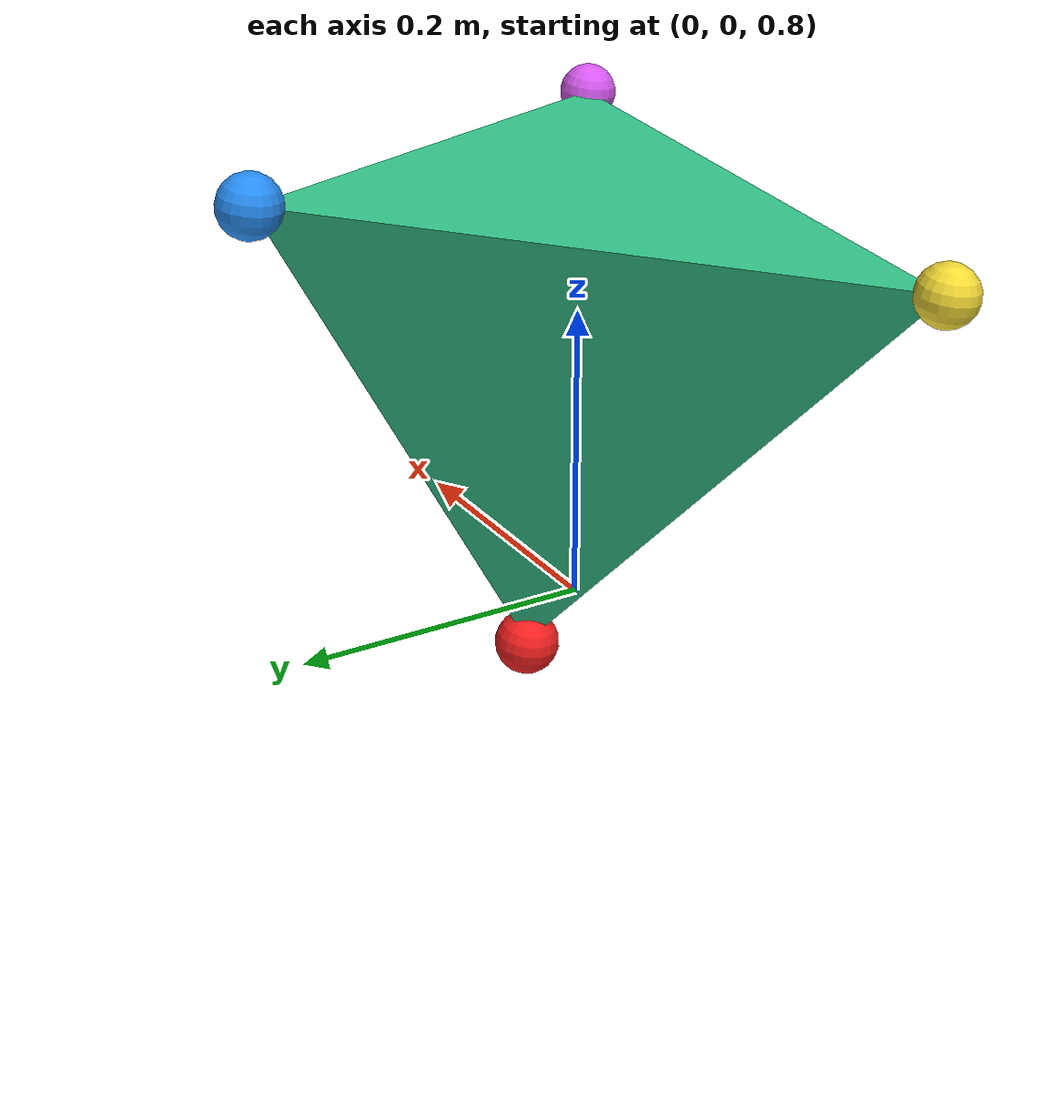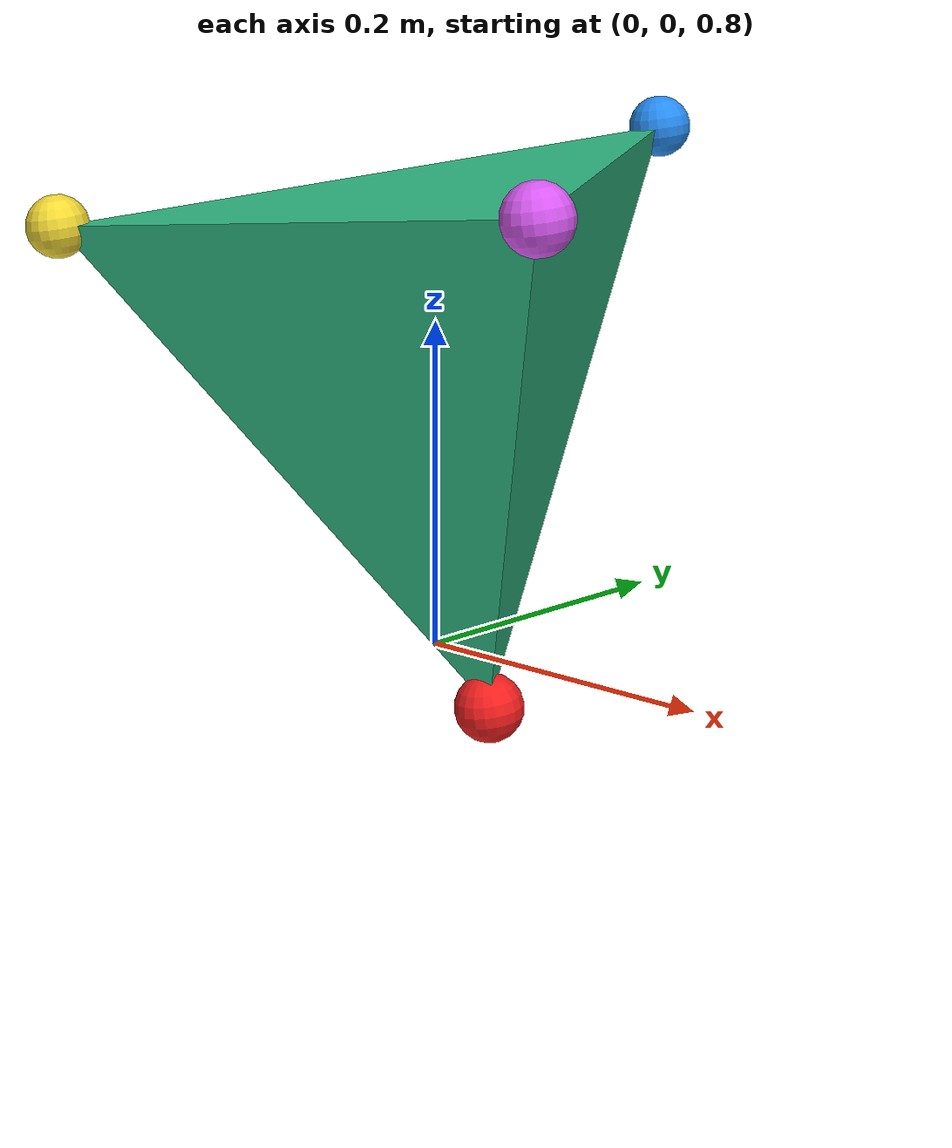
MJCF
<mujoco model="tetraedro_invertido">
  <compiler angle="degree" autolimits="true"/>
  <option timestep="0.002" gravity="0 0 -9.81"/>

  <visual>
    <global offwidth="1280" offheight="720"/>
    <quality shadowsize="4096"/>
    <headlight ambient="0.35 0.35 0.35" diffuse="0.65 0.65 0.65" specular="0.05 0.05 0.05"/>
    <rgba haze="0.15 0.25 0.35 1"/>
    <!-- setas/discos de contato (flags mjVIS_CONTACT*): finos para não cobrir o objeto -->
    <scale contactwidth="0.08" contactheight="0.02" forcewidth="0.04"/>
    <map force="0.002"/>
  </visual>
  <statistic center="0 0 0.45" extent="1.7"/>

  <asset>
    <texture type="skybox" builtin="gradient" rgb1="0.50 0.72 0.95" rgb2="0.03 0.05 0.10" width="512" height="3072"/>
    <texture name="grade" type="2d" builtin="checker" rgb1="0.19 0.23 0.29" rgb2="0.27 0.32 0.39"
             width="512" height="512" mark="edge" markrgb="0.55 0.60 0.66"/>
    <material name="piso" texture="grade" texrepeat="5 5" texuniform="true" reflectance="0.12"/>
    <material name="verde" rgba="0.20 0.78 0.55 1" specular="0.35" shininess="0.5"/>
    <mesh name="tetraedro" vertex="
       0.00000  0.23094  0.08165
      -0.20000 -0.11547  0.08165
       0.20000 -0.11547  0.08165
       0.00000  0.00000 -0.24495"/>
  </asset>

  <custom>
    <numeric name="esperado_massa_kg"       data="7.5425"/>    <!-- 1000 · a³/(6√2) -->
    <numeric name="esperado_altura_repouso" data="0.08165"/>   <!-- raio inscrito = a·√6/12, apoiado numa face -->
  </custom>

  <worldbody>
    <light name="sol" pos="1.5 -2.5 4" dir="-0.3 0.6 -1" type="directional" diffuse="0.85 0.85 0.85" specular="0.2 0.2 0.2"/>
    <camera name="frontal" pos="0 -2.15 0.60" xyaxes="1 0 0 0 0.04 1"/>

    <geom name="chao" type="plane" size="4 4 0.05" material="piso"
          friction="0.8 0.005 0.0001" solref="0.01 0.6"/>

    <!-- começa a 1.0 m, com a ponta para baixo e uma pequena inclinação para tornar o tombamento determinístico -->
    <body name="triangulo" pos="0 0 1.0" euler="6 -5 0">
      <freejoint name="livre"/>
      <geom name="tetraedro" type="mesh" mesh="tetraedro" material="verde"
            density="1000" friction="0.8 0.005 0.0001" solref="0.01 0.6"/>
      <site name="ponta"   type="sphere" pos=" 0.00  0.00 -0.24495" size="0.022" rgba="0.95 0.12 0.12 1"/>
      <site name="canto_a" type="sphere" pos=" 0.00  0.23094  0.08165" size="0.02" rgba="0.15 0.55 0.95 1"/>
      <site name="canto_b" type="sphere" pos="-0.20 -0.11547  0.08165" size="0.02" rgba="0.95 0.85 0.20 1"/>
      <site name="canto_c" type="sphere" pos=" 0.20 -0.11547  0.08165" size="0.02" rgba="0.85 0.35 0.95 1"/>
    </body>
  </worldbody>
</mujoco>
